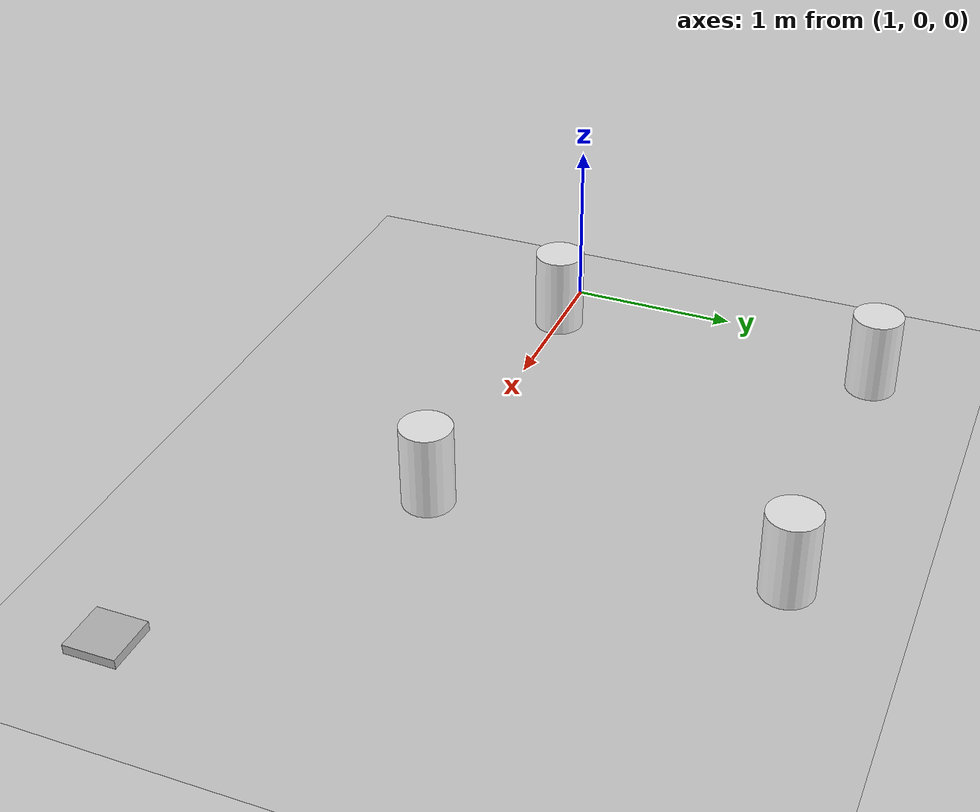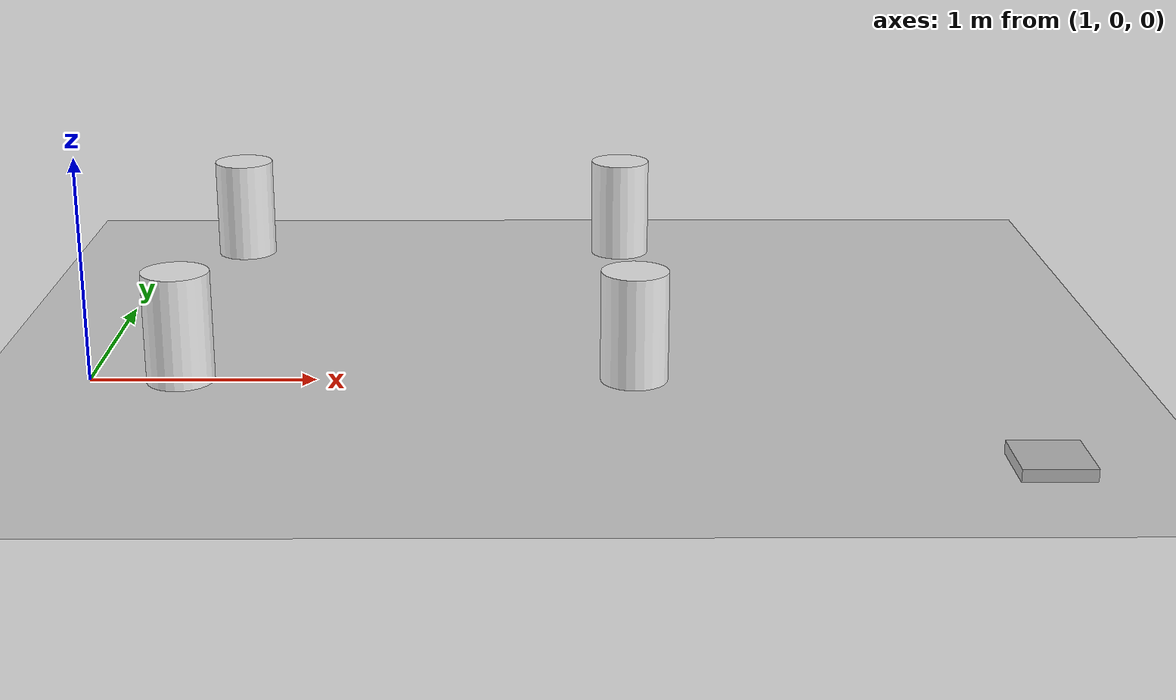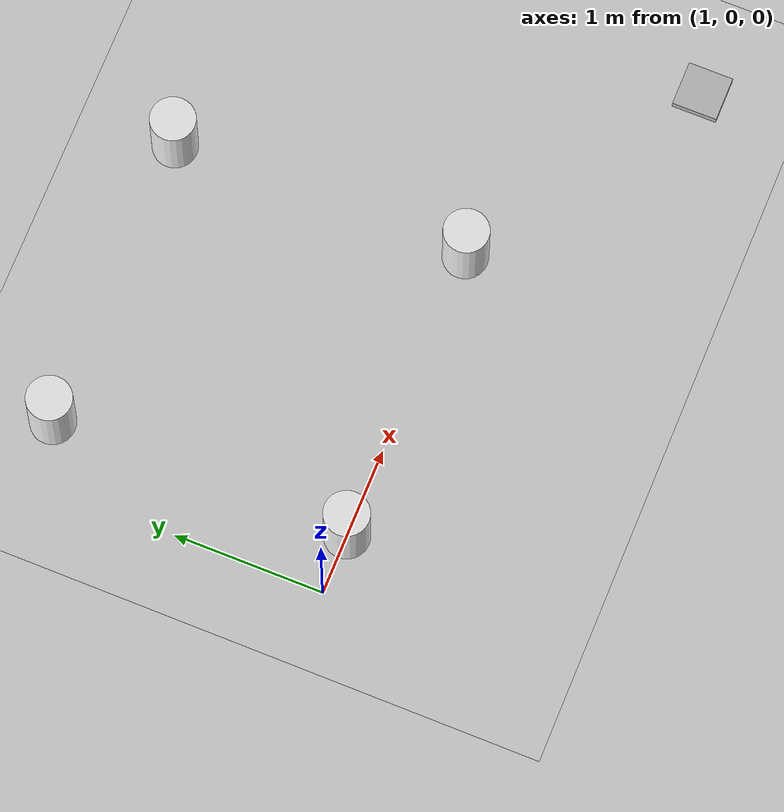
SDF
<?xml version="1.0" ?>
<sdf version="1.5">
  <world name="default">
    <!-- A global light source -->
    <include>
      <uri>model://sun</uri>
    </include>

    <!-- A ground plane -->
    <include>
      <uri>model://ground_plane</uri>
    </include>

    <include>
      <name>room</name>
        <uri>model://obstacles</uri>
       <pose>2.4 1 0 0 0 0</pose>
    </include>

    <include>
      <name>drone</name>
        <uri>model://drone</uri>
       <pose>5 -1 0 0 0 0</pose>
    </include>

  </world>
</sdf>

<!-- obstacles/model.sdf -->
<sdf version='1.8'>
  <model name='obstacles'>
    <pose>0 0 0 0 0 0</pose>
    <static>false</static>

    <link name='obstacle_1'>
      <pose>-1.0 -1.0 0.25 0 0 0</pose>
      <collision name='obstacle_1_collision'>
        <geometry>
          <cylinder>
            <radius>0.15</radius>
            <length>0.5</length>
          </cylinder>
        </geometry>
      </collision>
      <visual name='obstacle_1_visual'>
        <geometry>
          <cylinder>
            <radius>0.15</radius>
            <length>0.5</length>
          </cylinder>
        </geometry>
        <material>
          <script>
            <uri>file://media/materials/scripts/gazebo.material</uri>
            <name>Gazebo/White</name>
          </script>
        </material>
      </visual>
    </link>
    <link name='obstacle_2'>
      <pose>-1.0 1.0 0.25 0 0 0</pose>
      <collision name='obstacle_2_collision'>
        <geometry>
          <cylinder>
            <radius>0.15</radius>
            <length>0.5</length>
          </cylinder>
        </geometry>
      </collision>
      <visual name='obstacle_2_visual'>
        <geometry>
          <cylinder>
            <radius>0.15</radius>
            <length>0.5</length>
          </cylinder>
        </geometry>
        <material>
          <script>
            <uri>file://media/materials/scripts/gazebo.material</uri>
            <name>Gazebo/White</name>
          </script>
        </material>
      </visual>
    </link>
    <link name='obstacle_3'>
      <pose>1.0 -1.0 0.25 0 0 0</pose>
      <collision name='obstacle_3_collision'>
        <geometry>
          <cylinder>
            <radius>0.15</radius>
            <length>0.5</length>
          </cylinder>
        </geometry>
      </collision>
      <visual name='obstacle_3_visual'>
        <geometry>
          <cylinder>
            <radius>0.15</radius>
            <length>0.5</length>
          </cylinder>
        </geometry>
        <material>
          <script>
            <uri>file://media/materials/scripts/gazebo.material</uri>
            <name>Gazebo/White</name>
          </script>
        </material>
      </visual>
    </link>
    <link name='obstacle_4'>
      <pose>1.0 1.0 0.25 0 0 0</pose>
      <collision name='obstacle_4_collision'>
        <geometry>
          <cylinder>
            <radius>0.15</radius>
            <length>0.5</length>
          </cylinder>
        </geometry>
      </collision>
      <visual name='obstacle_4_visual'>
        <geometry>
          <cylinder>
            <radius>0.15</radius>
            <length>0.5</length>
          </cylinder>
        </geometry>
        <material>
          <script>
            <uri>file://media/materials/scripts/gazebo.material</uri>
            <name>Gazebo/White</name>
          </script>
        </material>
      </visual>
    </link>
  </model>
</sdf>

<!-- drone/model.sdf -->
<sdf version="1.9">
  <model name="drone">
    <pose>0 0 0.5 0 0 0</pose>
    <link name="base_link">
      <inertial>
        <mass>1.0</mass>
        <inertia>
          <ixx>0.002</ixx><iyy>0.002</iyy><izz>0.003</izz>
          <ixy>0</ixy><ixz>0</ixz><iyz>0</iyz>
        </inertia>
      </inertial>
      <collision name="col">
        <geometry><box><size>0.3 0.3 0.1</size></box></geometry>
      </collision>
      <visual name="vis">
        <geometry><box><size>0.3 0.3 0.1</size></box></geometry>
      </visual>
    </link>

    <plugin name="lin_vel" filename="gz-sim-linear-velocity-control-system">
      <topic>/model/drone/cmd_vel</topic>
      <use_world_frame>false</use_world_frame>
      <limit>3.0</limit>
    </plugin>
    <plugin name="ang_vel" filename="gz-sim-angular-velocity-control-system">
      <topic>/model/drone/cmd_vel</topic>
      <use_world_frame>false</use_world_frame>
      <limit>2.0</limit>
    </plugin>
    <plugin name="odom_pub" filename="gz-sim-odometry-publisher-system">
      <frame_id>world</frame_id>
      <child_frame_id>drone/base_link</child_frame_id>
      <topic>/model/drone/odometry</topic>
      <publish_velocity>true</publish_velocity>
    </plugin>
  </model>
</sdf>
